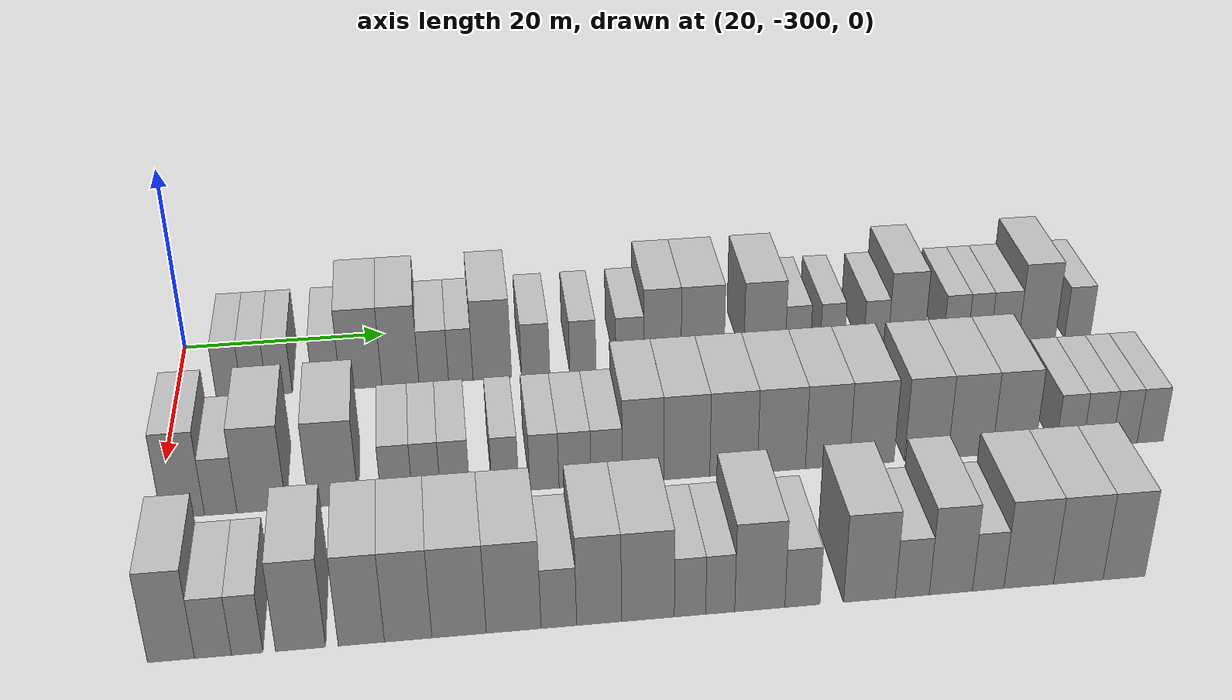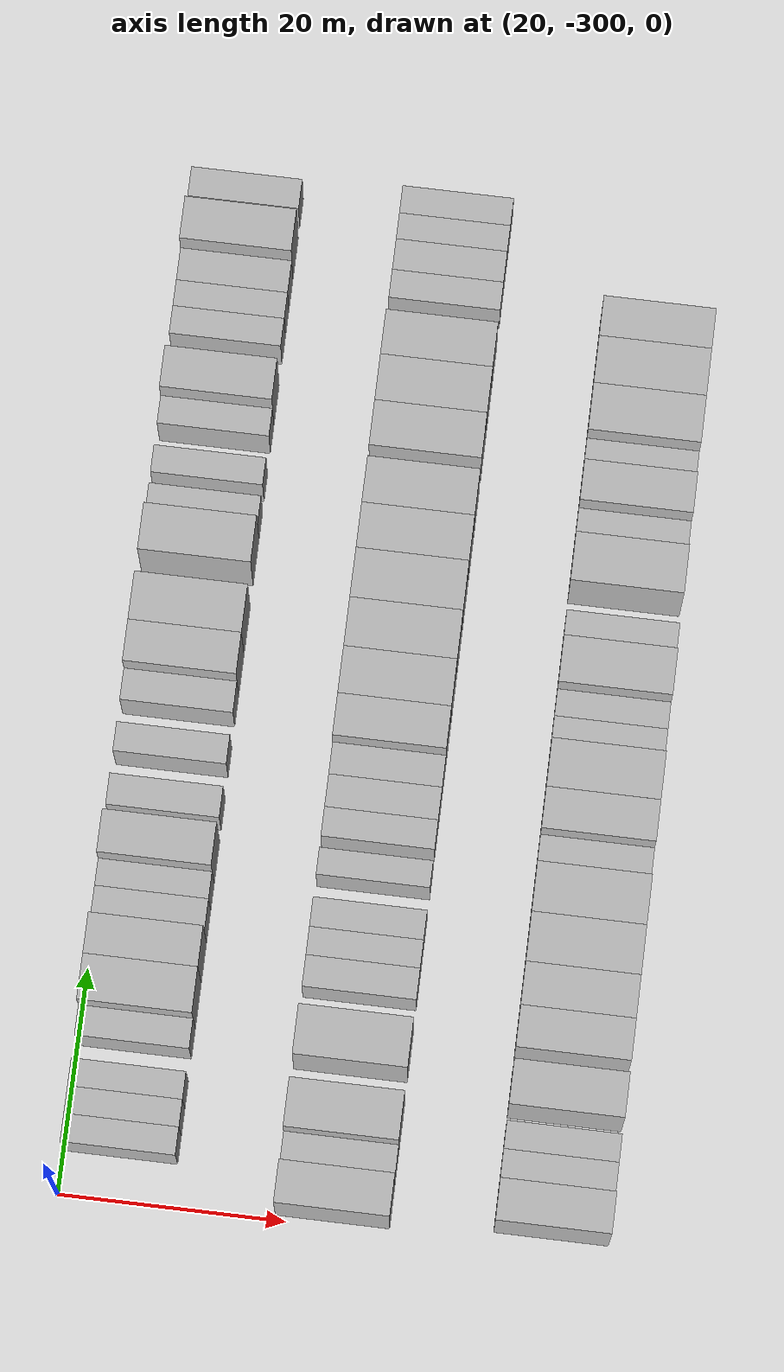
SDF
<sdf version="1.6">
 <world name="default">
  <model name="building_10">
   <static>1</static>
   <pose>25.0000 -294.9065 0 0.000000 0.000000 0.000000</pose>
   <link name="link">
    <pose>0 0 3.00 0 0 0</pose>
    <collision name="collision"><geometry><box><size>10.0000 2.4746 6.0000</size></box></geometry></collision>
    <visual name="visual">
     <cast_shadows>0</cast_shadows>
     <geometry><box><size>10.0000 2.4746 6.0000</size></box></geometry>
     <material>
      <script>
       <uri>model://HANNAS_wall/materials/scripts</uri>
       <uri>model://HANNAS_wall/materials/textures</uri>
       <name>vrc/HANNAS_wall</name>
      </script>
     </material>
    </visual>
   </link>
  </model>
  <model name="building_11">
   <static>1</static>
   <pose>25.0000 -292.4646 0 0.000000 0.000000 0.000000</pose>
   <link name="link">
    <pose>0 0 3.00 0 0 0</pose>
    <collision name="collision"><geometry><box><size>10.0000 2.4092 6.0000</size></box></geometry></collision>
    <visual name="visual">
     <cast_shadows>0</cast_shadows>
     <geometry><box><size>10.0000 2.4092 6.0000</size></box></geometry>
     <material>
      <script>
       <uri>model://HANNAS_wall/materials/scripts</uri>
       <uri>model://HANNAS_wall/materials/textures</uri>
       <name>vrc/HANNAS_wall</name>
      </script>
     </material>
    </visual>
   </link>
  </model>
  <model name="building_12">
   <static>1</static>
   <pose>25.0000 -290.0390 0 0.000000 0.000000 0.000000</pose>
   <link name="link">
    <pose>0 0 3.00 0 0 0</pose>
    <collision name="collision"><geometry><box><size>10.0000 2.4420 6.0000</size></box></geometry></collision>
    <visual name="visual">
     <cast_shadows>0</cast_shadows>
     <geometry><box><size>10.0000 2.4420 6.0000</size></box></geometry>
     <material>
      <script>
       <uri>model://HANNAS_wall/materials/scripts</uri>
       <uri>model://HANNAS_wall/materials/textures</uri>
       <name>vrc/HANNAS_wall</name>
      </script>
     </material>
    </visual>
   </link>
  </model>
  <model name="building_13">
   <static>1</static>
   <pose>25.0000 -285.4829 0 0.000000 0.000000 0.000000</pose>
   <link name="link">
    <pose>0 0 3.00 0 0 0</pose>
    <collision name="collision"><geometry><box><size>10.0000 2.6702 6.0000</size></box></geometry></collision>
    <visual name="visual">
     <cast_shadows>0</cast_shadows>
     <geometry><box><size>10.0000 2.6702 6.0000</size></box></geometry>
     <material>
      <script>
       <uri>model://HANNAS_wall/materials/scripts</uri>
       <uri>model://HANNAS_wall/materials/textures</uri>
       <name>vrc/HANNAS_wall</name>
      </script>
     </material>
    </visual>
   </link>
  </model>
  <model name="building_14">
   <static>1</static>
   <pose>25.0000 -282.1232 0 0.000000 0.000000 0.000000</pose>
   <link name="link">
    <pose>0 0 4.50 0 0 0</pose>
    <collision name="collision"><geometry><box><size>10.0000 4.0493 9.0000</size></box></geometry></collision>
    <visual name="visual">
     <cast_shadows>0</cast_shadows>
     <geometry><box><size>10.0000 4.0493 9.0000</size></box></geometry>
     <material>
      <script>
       <uri>model://HANNAS_wall/materials/scripts</uri>
       <uri>model://HANNAS_wall/materials/textures</uri>
       <name>vrc/HANNAS_wall</name>
      </script>
     </material>
    </visual>
   </link>
  </model>
  <model name="building_15">
   <static>1</static>
   <pose>25.0000 -278.2878 0 0.000000 0.000000 0.000000</pose>
   <link name="link">
    <pose>0 0 4.50 0 0 0</pose>
    <collision name="collision"><geometry><box><size>10.0000 3.6216 9.0000</size></box></geometry></collision>
    <visual name="visual">
     <cast_shadows>0</cast_shadows>
     <geometry><box><size>10.0000 3.6216 9.0000</size></box></geometry>
     <material>
      <script>
       <uri>model://HANNAS_wall/materials/scripts</uri>
       <uri>model://HANNAS_wall/materials/textures</uri>
       <name>vrc/HANNAS_wall</name>
      </script>
     </material>
    </visual>
   </link>
  </model>
  <model name="building_16">
   <static>1</static>
   <pose>25.0000 -275.0232 0 0.000000 0.000000 0.000000</pose>
   <link name="link">
    <pose>0 0 3.00 0 0 0</pose>
    <collision name="collision"><geometry><box><size>10.0000 2.9075 6.0000</size></box></geometry></collision>
    <visual name="visual">
     <cast_shadows>0</cast_shadows>
     <geometry><box><size>10.0000 2.9075 6.0000</size></box></geometry>
     <material>
      <script>
       <uri>model://HANNAS_wall/materials/scripts</uri>
       <uri>model://HANNAS_wall/materials/textures</uri>
       <name>vrc/HANNAS_wall</name>
      </script>
     </material>
    </visual>
   </link>
  </model>
  <model name="building_17">
   <static>1</static>
   <pose>25.0000 -272.3607 0 0.000000 0.000000 0.000000</pose>
   <link name="link">
    <pose>0 0 3.00 0 0 0</pose>
    <collision name="collision"><geometry><box><size>10.0000 2.4175 6.0000</size></box></geometry></collision>
    <visual name="visual">
     <cast_shadows>0</cast_shadows>
     <geometry><box><size>10.0000 2.4175 6.0000</size></box></geometry>
     <material>
      <script>
       <uri>model://HANNAS_wall/materials/scripts</uri>
       <uri>model://HANNAS_wall/materials/textures</uri>
       <name>vrc/HANNAS_wall</name>
      </script>
     </material>
    </visual>
   </link>
  </model>
  <model name="building_18">
   <static>1</static>
   <pose>25.0000 -269.2411 0 0.000000 0.000000 0.000000</pose>
   <link name="link">
    <pose>0 0 4.50 0 0 0</pose>
    <collision name="collision"><geometry><box><size>10.0000 3.8217 9.0000</size></box></geometry></collision>
    <visual name="visual">
     <cast_shadows>0</cast_shadows>
     <geometry><box><size>10.0000 3.8217 9.0000</size></box></geometry>
     <material>
      <script>
       <uri>model://HANNAS_wall/materials/scripts</uri>
       <uri>model://HANNAS_wall/materials/textures</uri>
       <name>vrc/HANNAS_wall</name>
      </script>
     </material>
    </visual>
   </link>
  </model>
  <model name="building_19">
   <static>1</static>
   <pose>25.0000 -264.9265 0 0.000000 0.000000 0.000000</pose>
   <link name="link">
    <pose>0 0 3.00 0 0 0</pose>
    <collision name="collision"><geometry><box><size>10.0000 2.8074 6.0000</size></box></geometry></collision>
    <visual name="visual">
     <cast_shadows>0</cast_shadows>
     <geometry><box><size>10.0000 2.8074 6.0000</size></box></geometry>
     <material>
      <script>
       <uri>model://HANNAS_wall/materials/scripts</uri>
       <uri>model://HANNAS_wall/materials/textures</uri>
       <name>vrc/HANNAS_wall</name>
      </script>
     </material>
    </visual>
   </link>
  </model>
  <model name="building_20">
   <static>1</static>
   <pose>25.0000 -260.2096 0 0.000000 0.000000 0.000000</pose>
   <link name="link">
    <pose>0 0 3.00 0 0 0</pose>
    <collision name="collision"><geometry><box><size>10.0000 2.6264 6.0000</size></box></geometry></collision>
    <visual name="visual">
     <cast_shadows>0</cast_shadows>
     <geometry><box><size>10.0000 2.6264 6.0000</size></box></geometry>
     <material>
      <script>
       <uri>model://HANNAS_wall/materials/scripts</uri>
       <uri>model://HANNAS_wall/materials/textures</uri>
       <name>vrc/HANNAS_wall</name>
      </script>
     </material>
    </visual>
   </link>
  </model>
  <model name="building_21">
   <static>1</static>
   <pose>25.0000 -255.4781 0 0.000000 0.000000 0.000000</pose>
   <link name="link">
    <pose>0 0 3.00 0 0 0</pose>
    <collision name="collision"><geometry><box><size>10.0000 2.8368 6.0000</size></box></geometry></collision>
    <visual name="visual">
     <cast_shadows>0</cast_shadows>
     <geometry><box><size>10.0000 2.8368 6.0000</size></box></geometry>
     <material>
      <script>
       <uri>model://HANNAS_wall/materials/scripts</uri>
       <uri>model://HANNAS_wall/materials/textures</uri>
       <name>vrc/HANNAS_wall</name>
      </script>
     </material>
    </visual>
   </link>
  </model>
  <model name="building_22">
   <static>1</static>
   <pose>25.0000 -252.1929 0 0.000000 0.000000 0.000000</pose>
   <link name="link">
    <pose>0 0 4.50 0 0 0</pose>
    <collision name="collision"><geometry><box><size>10.0000 3.7335 9.0000</size></box></geometry></collision>
    <visual name="visual">
     <cast_shadows>0</cast_shadows>
     <geometry><box><size>10.0000 3.7335 9.0000</size></box></geometry>
     <material>
      <script>
       <uri>model://HANNAS_wall/materials/scripts</uri>
       <uri>model://HANNAS_wall/materials/textures</uri>
       <name>vrc/HANNAS_wall</name>
      </script>
     </material>
    </visual>
   </link>
  </model>
  <model name="building_23">
   <static>1</static>
   <pose>25.0000 -248.1454 0 0.000000 0.000000 0.000000</pose>
   <link name="link">
    <pose>0 0 4.50 0 0 0</pose>
    <collision name="collision"><geometry><box><size>10.0000 4.3615 9.0000</size></box></geometry></collision>
    <visual name="visual">
     <cast_shadows>0</cast_shadows>
     <geometry><box><size>10.0000 4.3615 9.0000</size></box></geometry>
     <material>
      <script>
       <uri>model://HANNAS_wall/materials/scripts</uri>
       <uri>model://HANNAS_wall/materials/textures</uri>
       <name>vrc/HANNAS_wall</name>
      </script>
     </material>
    </visual>
   </link>
  </model>
  <model name="building_24">
   <static>1</static>
   <pose>25.0000 -241.8456 0 0.000000 0.000000 0.000000</pose>
   <link name="link">
    <pose>0 0 4.50 0 0 0</pose>
    <collision name="collision"><geometry><box><size>10.0000 4.2381 9.0000</size></box></geometry></collision>
    <visual name="visual">
     <cast_shadows>0</cast_shadows>
     <geometry><box><size>10.0000 4.2381 9.0000</size></box></geometry>
     <material>
      <script>
       <uri>model://HANNAS_wall/materials/scripts</uri>
       <uri>model://HANNAS_wall/materials/textures</uri>
       <name>vrc/HANNAS_wall</name>
      </script>
     </material>
    </visual>
   </link>
  </model>
  <model name="building_25">
   <static>1</static>
   <pose>25.0000 -238.4380 0 0.000000 0.000000 0.000000</pose>
   <link name="link">
    <pose>0 0 3.00 0 0 0</pose>
    <collision name="collision"><geometry><box><size>10.0000 2.5771 6.0000</size></box></geometry></collision>
    <visual name="visual">
     <cast_shadows>0</cast_shadows>
     <geometry><box><size>10.0000 2.5771 6.0000</size></box></geometry>
     <material>
      <script>
       <uri>model://HANNAS_wall/materials/scripts</uri>
       <uri>model://HANNAS_wall/materials/textures</uri>
       <name>vrc/HANNAS_wall</name>
      </script>
     </material>
    </visual>
   </link>
  </model>
  <model name="building_26">
   <static>1</static>
   <pose>25.0000 -234.9004 0 0.000000 0.000000 0.000000</pose>
   <link name="link">
    <pose>0 0 3.00 0 0 0</pose>
    <collision name="collision"><geometry><box><size>10.0000 2.4980 6.0000</size></box></geometry></collision>
    <visual name="visual">
     <cast_shadows>0</cast_shadows>
     <geometry><box><size>10.0000 2.4980 6.0000</size></box></geometry>
     <material>
      <script>
       <uri>model://HANNAS_wall/materials/scripts</uri>
       <uri>model://HANNAS_wall/materials/textures</uri>
       <name>vrc/HANNAS_wall</name>
      </script>
     </material>
    </visual>
   </link>
  </model>
  <model name="building_27">
   <static>1</static>
   <pose>25.0000 -230.3771 0 0.000000 0.000000 0.000000</pose>
   <link name="link">
    <pose>0 0 3.00 0 0 0</pose>
    <collision name="collision"><geometry><box><size>10.0000 2.5487 6.0000</size></box></geometry></collision>
    <visual name="visual">
     <cast_shadows>0</cast_shadows>
     <geometry><box><size>10.0000 2.5487 6.0000</size></box></geometry>
     <material>
      <script>
       <uri>model://HANNAS_wall/materials/scripts</uri>
       <uri>model://HANNAS_wall/materials/textures</uri>
       <name>vrc/HANNAS_wall</name>
      </script>
     </material>
    </visual>
   </link>
  </model>
  <model name="building_28">
   <static>1</static>
   <pose>25.0000 -227.2078 0 0.000000 0.000000 0.000000</pose>
   <link name="link">
    <pose>0 0 4.50 0 0 0</pose>
    <collision name="collision"><geometry><box><size>10.0000 3.7900 9.0000</size></box></geometry></collision>
    <visual name="visual">
     <cast_shadows>0</cast_shadows>
     <geometry><box><size>10.0000 3.7900 9.0000</size></box></geometry>
     <material>
      <script>
       <uri>model://HANNAS_wall/materials/scripts</uri>
       <uri>model://HANNAS_wall/materials/textures</uri>
       <name>vrc/HANNAS_wall</name>
      </script>
     </material>
    </visual>
   </link>
  </model>
  <model name="building_29">
   <static>1</static>
   <pose>25.0000 -222.0278 0 0.000000 0.000000 0.000000</pose>
   <link name="link">
    <pose>0 0 3.00 0 0 0</pose>
    <collision name="collision"><geometry><box><size>10.0000 2.5699 6.0000</size></box></geometry></collision>
    <visual name="visual">
     <cast_shadows>0</cast_shadows>
     <geometry><box><size>10.0000 2.5699 6.0000</size></box></geometry>
     <material>
      <script>
       <uri>model://HANNAS_wall/materials/scripts</uri>
       <uri>model://HANNAS_wall/materials/textures</uri>
       <name>vrc/HANNAS_wall</name>
      </script>
     </material>
    </visual>
   </link>
  </model>
  <model name="building_30">
   <static>1</static>
   <pose>25.0000 -219.5362 0 0.000000 0.000000 0.000000</pose>
   <link name="link">
    <pose>0 0 3.00 0 0 0</pose>
    <collision name="collision"><geometry><box><size>10.0000 2.4133 6.0000</size></box></geometry></collision>
    <visual name="visual">
     <cast_shadows>0</cast_shadows>
     <geometry><box><size>10.0000 2.4133 6.0000</size></box></geometry>
     <material>
      <script>
       <uri>model://HANNAS_wall/materials/scripts</uri>
       <uri>model://HANNAS_wall/materials/textures</uri>
       <name>vrc/HANNAS_wall</name>
      </script>
     </material>
    </visual>
   </link>
  </model>
  <model name="building_31">
   <static>1</static>
   <pose>25.0000 -216.8375 0 0.000000 0.000000 0.000000</pose>
   <link name="link">
    <pose>0 0 3.00 0 0 0</pose>
    <collision name="collision"><geometry><box><size>10.0000 2.9841 6.0000</size></box></geometry></collision>
    <visual name="visual">
     <cast_shadows>0</cast_shadows>
     <geometry><box><size>10.0000 2.9841 6.0000</size></box></geometry>
     <material>
      <script>
       <uri>model://HANNAS_wall/materials/scripts</uri>
       <uri>model://HANNAS_wall/materials/textures</uri>
       <name>vrc/HANNAS_wall</name>
      </script>
     </material>
    </visual>
   </link>
  </model>
  <model name="building_32">
   <static>1</static>
   <pose>25.0000 -213.4018 0 0.000000 0.000000 0.000000</pose>
   <link name="link">
    <pose>0 0 4.50 0 0 0</pose>
    <collision name="collision"><geometry><box><size>10.0000 3.8874 9.0000</size></box></geometry></collision>
    <visual name="visual">
     <cast_shadows>0</cast_shadows>
     <geometry><box><size>10.0000 3.8874 9.0000</size></box></geometry>
     <material>
      <script>
       <uri>model://HANNAS_wall/materials/scripts</uri>
       <uri>model://HANNAS_wall/materials/textures</uri>
       <name>vrc/HANNAS_wall</name>
      </script>
     </material>
    </visual>
   </link>
  </model>
  <model name="building_33">
   <static>1</static>
   <pose>25.0000 -209.0826 0 0.000000 0.000000 0.000000</pose>
   <link name="link">
    <pose>0 0 3.00 0 0 0</pose>
    <collision name="collision"><geometry><box><size>10.0000 2.7510 6.0000</size></box></geometry></collision>
    <visual name="visual">
     <cast_shadows>0</cast_shadows>
     <geometry><box><size>10.0000 2.7510 6.0000</size></box></geometry>
     <material>
      <script>
       <uri>model://HANNAS_wall/materials/scripts</uri>
       <uri>model://HANNAS_wall/materials/textures</uri>
       <name>vrc/HANNAS_wall</name>
      </script>
     </material>
    </visual>
   </link>
  </model>
  <model name="building_181">
   <static>1</static>
   <pose>44.0000 -297.6415 0 0.000000 0.000000 0.000000</pose>
   <link name="link">
    <pose>0 0 4.50 0 0 0</pose>
    <collision name="collision"><geometry><box><size>10.0000 3.7515 9.0000</size></box></geometry></collision>
    <visual name="visual">
     <cast_shadows>0</cast_shadows>
     <geometry><box><size>10.0000 3.7515 9.0000</size></box></geometry>
     <material>
      <script>
       <uri>model://HANNAS_wall/materials/scripts</uri>
       <uri>model://HANNAS_wall/materials/textures</uri>
       <name>vrc/HANNAS_wall</name>
      </script>
     </material>
    </visual>
   </link>
  </model>
  <model name="building_182">
   <static>1</static>
   <pose>44.0000 -294.3470 0 0.000000 0.000000 0.000000</pose>
   <link name="link">
    <pose>0 0 3.00 0 0 0</pose>
    <collision name="collision"><geometry><box><size>10.0000 2.8374 6.0000</size></box></geometry></collision>
    <visual name="visual">
     <cast_shadows>0</cast_shadows>
     <geometry><box><size>10.0000 2.8374 6.0000</size></box></geometry>
     <material>
      <script>
       <uri>model://HANNAS_wall/materials/scripts</uri>
       <uri>model://HANNAS_wall/materials/textures</uri>
       <name>vrc/HANNAS_wall</name>
      </script>
     </material>
    </visual>
   </link>
  </model>
  <model name="building_183">
   <static>1</static>
   <pose>44.0000 -290.7730 0 0.000000 0.000000 0.000000</pose>
   <link name="link">
    <pose>0 0 4.50 0 0 0</pose>
    <collision name="collision"><geometry><box><size>10.0000 4.3106 9.0000</size></box></geometry></collision>
    <visual name="visual">
     <cast_shadows>0</cast_shadows>
     <geometry><box><size>10.0000 4.3106 9.0000</size></box></geometry>
     <material>
      <script>
       <uri>model://HANNAS_wall/materials/scripts</uri>
       <uri>model://HANNAS_wall/materials/textures</uri>
       <name>vrc/HANNAS_wall</name>
      </script>
     </material>
    </visual>
   </link>
  </model>
  <model name="building_184">
   <static>1</static>
   <pose>44.0000 -284.4178 0 0.000000 0.000000 0.000000</pose>
   <link name="link">
    <pose>0 0 4.50 0 0 0</pose>
    <collision name="collision"><geometry><box><size>10.0000 4.3997 9.0000</size></box></geometry></collision>
    <visual name="visual">
     <cast_shadows>0</cast_shadows>
     <geometry><box><size>10.0000 4.3997 9.0000</size></box></geometry>
     <material>
      <script>
       <uri>model://HANNAS_wall/materials/scripts</uri>
       <uri>model://HANNAS_wall/materials/textures</uri>
       <name>vrc/HANNAS_wall</name>
      </script>
     </material>
    </visual>
   </link>
  </model>
  <model name="building_185">
   <static>1</static>
   <pose>44.0000 -278.8177 0 0.000000 0.000000 0.000000</pose>
   <link name="link">
    <pose>0 0 3.00 0 0 0</pose>
    <collision name="collision"><geometry><box><size>10.0000 2.8006 6.0000</size></box></geometry></collision>
    <visual name="visual">
     <cast_shadows>0</cast_shadows>
     <geometry><box><size>10.0000 2.8006 6.0000</size></box></geometry>
     <material>
      <script>
       <uri>model://HANNAS_wall/materials/scripts</uri>
       <uri>model://HANNAS_wall/materials/textures</uri>
       <name>vrc/HANNAS_wall</name>
      </script>
     </material>
    </visual>
   </link>
  </model>
  <model name="building_186">
   <static>1</static>
   <pose>44.0000 -276.1673 0 0.000000 0.000000 0.000000</pose>
   <link name="link">
    <pose>0 0 3.00 0 0 0</pose>
    <collision name="collision"><geometry><box><size>10.0000 2.5003 6.0000</size></box></geometry></collision>
    <visual name="visual">
     <cast_shadows>0</cast_shadows>
     <geometry><box><size>10.0000 2.5003 6.0000</size></box></geometry>
     <material>
      <script>
       <uri>model://HANNAS_wall/materials/scripts</uri>
       <uri>model://HANNAS_wall/materials/textures</uri>
       <name>vrc/HANNAS_wall</name>
      </script>
     </material>
    </visual>
   </link>
  </model>
  <model name="building_187">
   <static>1</static>
   <pose>44.0000 -273.6014 0 0.000000 0.000000 0.000000</pose>
   <link name="link">
    <pose>0 0 3.00 0 0 0</pose>
    <collision name="collision"><geometry><box><size>10.0000 2.6316 6.0000</size></box></geometry></collision>
    <visual name="visual">
     <cast_shadows>0</cast_shadows>
     <geometry><box><size>10.0000 2.6316 6.0000</size></box></geometry>
     <material>
      <script>
       <uri>model://HANNAS_wall/materials/scripts</uri>
       <uri>model://HANNAS_wall/materials/textures</uri>
       <name>vrc/HANNAS_wall</name>
      </script>
     </material>
    </visual>
   </link>
  </model>
  <model name="building_188">
   <static>1</static>
   <pose>44.0000 -269.0796 0 0.000000 0.000000 0.000000</pose>
   <link name="link">
    <pose>0 0 3.00 0 0 0</pose>
    <collision name="collision"><geometry><box><size>10.0000 2.4119 6.0000</size></box></geometry></collision>
    <visual name="visual">
     <cast_shadows>0</cast_shadows>
     <geometry><box><size>10.0000 2.4119 6.0000</size></box></geometry>
     <material>
      <script>
       <uri>model://HANNAS_wall/materials/scripts</uri>
       <uri>model://HANNAS_wall/materials/textures</uri>
       <name>vrc/HANNAS_wall</name>
      </script>
     </material>
    </visual>
   </link>
  </model>
  <model name="building_189">
   <static>1</static>
   <pose>44.0000 -265.5521 0 0.000000 0.000000 0.000000</pose>
   <link name="link">
    <pose>0 0 3.00 0 0 0</pose>
    <collision name="collision"><geometry><box><size>10.0000 2.6431 6.0000</size></box></geometry></collision>
    <visual name="visual">
     <cast_shadows>0</cast_shadows>
     <geometry><box><size>10.0000 2.6431 6.0000</size></box></geometry>
     <material>
      <script>
       <uri>model://HANNAS_wall/materials/scripts</uri>
       <uri>model://HANNAS_wall/materials/textures</uri>
       <name>vrc/HANNAS_wall</name>
      </script>
     </material>
    </visual>
   </link>
  </model>
  <model name="building_190">
   <static>1</static>
   <pose>44.0000 -262.7664 0 0.000000 0.000000 0.000000</pose>
   <link name="link">
    <pose>0 0 3.00 0 0 0</pose>
    <collision name="collision"><geometry><box><size>10.0000 2.9283 6.0000</size></box></geometry></collision>
    <visual name="visual">
     <cast_shadows>0</cast_shadows>
     <geometry><box><size>10.0000 2.9283 6.0000</size></box></geometry>
     <material>
      <script>
       <uri>model://HANNAS_wall/materials/scripts</uri>
       <uri>model://HANNAS_wall/materials/textures</uri>
       <name>vrc/HANNAS_wall</name>
      </script>
     </material>
    </visual>
   </link>
  </model>
  <model name="building_191">
   <static>1</static>
   <pose>44.0000 -259.8717 0 0.000000 0.000000 0.000000</pose>
   <link name="link">
    <pose>0 0 3.00 0 0 0</pose>
    <collision name="collision"><geometry><box><size>10.0000 2.8611 6.0000</size></box></geometry></collision>
    <visual name="visual">
     <cast_shadows>0</cast_shadows>
     <geometry><box><size>10.0000 2.8611 6.0000</size></box></geometry>
     <material>
      <script>
       <uri>model://HANNAS_wall/materials/scripts</uri>
       <uri>model://HANNAS_wall/materials/textures</uri>
       <name>vrc/HANNAS_wall</name>
      </script>
     </material>
    </visual>
   </link>
  </model>
  <model name="building_192">
   <static>1</static>
   <pose>44.0000 -256.5457 0 0.000000 0.000000 0.000000</pose>
   <link name="link">
    <pose>0 0 4.50 0 0 0</pose>
    <collision name="collision"><geometry><box><size>10.0000 3.7911 9.0000</size></box></geometry></collision>
    <visual name="visual">
     <cast_shadows>0</cast_shadows>
     <geometry><box><size>10.0000 3.7911 9.0000</size></box></geometry>
     <material>
      <script>
       <uri>model://HANNAS_wall/materials/scripts</uri>
       <uri>model://HANNAS_wall/materials/textures</uri>
       <name>vrc/HANNAS_wall</name>
      </script>
     </material>
    </visual>
   </link>
  </model>
  <model name="building_193">
   <static>1</static>
   <pose>44.0000 -252.5332 0 0.000000 0.000000 0.000000</pose>
   <link name="link">
    <pose>0 0 4.50 0 0 0</pose>
    <collision name="collision"><geometry><box><size>10.0000 4.2337 9.0000</size></box></geometry></collision>
    <visual name="visual">
     <cast_shadows>0</cast_shadows>
     <geometry><box><size>10.0000 4.2337 9.0000</size></box></geometry>
     <material>
      <script>
       <uri>model://HANNAS_wall/materials/scripts</uri>
       <uri>model://HANNAS_wall/materials/textures</uri>
       <name>vrc/HANNAS_wall</name>
      </script>
     </material>
    </visual>
   </link>
  </model>
  <model name="building_194">
   <static>1</static>
   <pose>44.0000 -248.2084 0 0.000000 0.000000 0.000000</pose>
   <link name="link">
    <pose>0 0 4.50 0 0 0</pose>
    <collision name="collision"><geometry><box><size>10.0000 4.4159 9.0000</size></box></geometry></collision>
    <visual name="visual">
     <cast_shadows>0</cast_shadows>
     <geometry><box><size>10.0000 4.4159 9.0000</size></box></geometry>
     <material>
      <script>
       <uri>model://HANNAS_wall/materials/scripts</uri>
       <uri>model://HANNAS_wall/materials/textures</uri>
       <name>vrc/HANNAS_wall</name>
      </script>
     </material>
    </visual>
   </link>
  </model>
  <model name="building_195">
   <static>1</static>
   <pose>44.0000 -243.7559 0 0.000000 0.000000 0.000000</pose>
   <link name="link">
    <pose>0 0 4.50 0 0 0</pose>
    <collision name="collision"><geometry><box><size>10.0000 4.4892 9.0000</size></box></geometry></collision>
    <visual name="visual">
     <cast_shadows>0</cast_shadows>
     <geometry><box><size>10.0000 4.4892 9.0000</size></box></geometry>
     <material>
      <script>
       <uri>model://HANNAS_wall/materials/scripts</uri>
       <uri>model://HANNAS_wall/materials/textures</uri>
       <name>vrc/HANNAS_wall</name>
      </script>
     </material>
    </visual>
   </link>
  </model>
  <model name="building_196">
   <static>1</static>
   <pose>44.0000 -239.4496 0 0.000000 0.000000 0.000000</pose>
   <link name="link">
    <pose>0 0 4.50 0 0 0</pose>
    <collision name="collision"><geometry><box><size>10.0000 4.1235 9.0000</size></box></geometry></collision>
    <visual name="visual">
     <cast_shadows>0</cast_shadows>
     <geometry><box><size>10.0000 4.1235 9.0000</size></box></geometry>
     <material>
      <script>
       <uri>model://HANNAS_wall/materials/scripts</uri>
       <uri>model://HANNAS_wall/materials/textures</uri>
       <name>vrc/HANNAS_wall</name>
      </script>
     </material>
    </visual>
   </link>
  </model>
  <model name="building_197">
   <static>1</static>
   <pose>44.0000 -235.2757 0 0.000000 0.000000 0.000000</pose>
   <link name="link">
    <pose>0 0 4.50 0 0 0</pose>
    <collision name="collision"><geometry><box><size>10.0000 4.2243 9.0000</size></box></geometry></collision>
    <visual name="visual">
     <cast_shadows>0</cast_shadows>
     <geometry><box><size>10.0000 4.2243 9.0000</size></box></geometry>
     <material>
      <script>
       <uri>model://HANNAS_wall/materials/scripts</uri>
       <uri>model://HANNAS_wall/materials/textures</uri>
       <name>vrc/HANNAS_wall</name>
      </script>
     </material>
    </visual>
   </link>
  </model>
  <model name="building_198">
   <static>1</static>
   <pose>44.0000 -230.0866 0 0.000000 0.000000 0.000000</pose>
   <link name="link">
    <pose>0 0 4.50 0 0 0</pose>
    <collision name="collision"><geometry><box><size>10.0000 4.1537 9.0000</size></box></geometry></collision>
    <visual name="visual">
     <cast_shadows>0</cast_shadows>
     <geometry><box><size>10.0000 4.1537 9.0000</size></box></geometry>
     <material>
      <script>
       <uri>model://HANNAS_wall/materials/scripts</uri>
       <uri>model://HANNAS_wall/materials/textures</uri>
       <name>vrc/HANNAS_wall</name>
      </script>
     </material>
    </visual>
   </link>
  </model>
  <model name="building_199">
   <static>1</static>
   <pose>44.0000 -225.8986 0 0.000000 0.000000 0.000000</pose>
   <link name="link">
    <pose>0 0 4.50 0 0 0</pose>
    <collision name="collision"><geometry><box><size>10.0000 4.2223 9.0000</size></box></geometry></collision>
    <visual name="visual">
     <cast_shadows>0</cast_shadows>
     <geometry><box><size>10.0000 4.2223 9.0000</size></box></geometry>
     <material>
      <script>
       <uri>model://HANNAS_wall/materials/scripts</uri>
       <uri>model://HANNAS_wall/materials/textures</uri>
       <name>vrc/HANNAS_wall</name>
      </script>
     </material>
    </visual>
   </link>
  </model>
  <model name="building_200">
   <static>1</static>
   <pose>44.0000 -221.7266 0 0.000000 0.000000 0.000000</pose>
   <link name="link">
    <pose>0 0 4.50 0 0 0</pose>
    <collision name="collision"><geometry><box><size>10.0000 4.1217 9.0000</size></box></geometry></collision>
    <visual name="visual">
     <cast_shadows>0</cast_shadows>
     <geometry><box><size>10.0000 4.1217 9.0000</size></box></geometry>
     <material>
      <script>
       <uri>model://HANNAS_wall/materials/scripts</uri>
       <uri>model://HANNAS_wall/materials/textures</uri>
       <name>vrc/HANNAS_wall</name>
      </script>
     </material>
    </visual>
   </link>
  </model>
  <model name="building_201">
   <static>1</static>
   <pose>44.0000 -216.3591 0 0.000000 0.000000 0.000000</pose>
   <link name="link">
    <pose>0 0 3.00 0 0 0</pose>
    <collision name="collision"><geometry><box><size>10.0000 2.6135 6.0000</size></box></geometry></collision>
    <visual name="visual">
     <cast_shadows>0</cast_shadows>
     <geometry><box><size>10.0000 2.6135 6.0000</size></box></geometry>
     <material>
      <script>
       <uri>model://HANNAS_wall/materials/scripts</uri>
       <uri>model://HANNAS_wall/materials/textures</uri>
       <name>vrc/HANNAS_wall</name>
      </script>
     </material>
    </visual>
   </link>
  </model>
  <model name="building_202">
   <static>1</static>
   <pose>44.0000 -213.6155 0 0.000000 0.000000 0.000000</pose>
   <link name="link">
    <pose>0 0 3.00 0 0 0</pose>
    <collision name="collision"><geometry><box><size>10.0000 2.8737 6.0000</size></box></geometry></collision>
    <visual name="visual">
     <cast_shadows>0</cast_shadows>
     <geometry><box><size>10.0000 2.8737 6.0000</size></box></geometry>
     <material>
      <script>
       <uri>model://HANNAS_wall/materials/scripts</uri>
       <uri>model://HANNAS_wall/materials/textures</uri>
       <name>vrc/HANNAS_wall</name>
      </script>
     </material>
    </visual>
   </link>
  </model>
  <model name="building_203">
   <static>1</static>
   <pose>44.0000 -210.9670 0 0.000000 0.000000 0.000000</pose>
   <link name="link">
    <pose>0 0 3.00 0 0 0</pose>
    <collision name="collision"><geometry><box><size>10.0000 2.4234 6.0000</size></box></geometry></collision>
    <visual name="visual">
     <cast_shadows>0</cast_shadows>
     <geometry><box><size>10.0000 2.4234 6.0000</size></box></geometry>
     <material>
      <script>
       <uri>model://HANNAS_wall/materials/scripts</uri>
       <uri>model://HANNAS_wall/materials/textures</uri>
       <name>vrc/HANNAS_wall</name>
      </script>
     </material>
    </visual>
   </link>
  </model>
  <model name="building_204">
   <static>1</static>
   <pose>44.0000 -208.4758 0 0.000000 0.000000 0.000000</pose>
   <link name="link">
    <pose>0 0 3.00 0 0 0</pose>
    <collision name="collision"><geometry><box><size>10.0000 2.5591 6.0000</size></box></geometry></collision>
    <visual name="visual">
     <cast_shadows>0</cast_shadows>
     <geometry><box><size>10.0000 2.5591 6.0000</size></box></geometry>
     <material>
      <script>
       <uri>model://HANNAS_wall/materials/scripts</uri>
       <uri>model://HANNAS_wall/materials/textures</uri>
       <name>vrc/HANNAS_wall</name>
      </script>
     </material>
    </visual>
   </link>
  </model>
  <model name="building_361">
   <static>1</static>
   <pose>63.0000 -296.8896 0 0.000000 0.000000 0.000000</pose>
   <link name="link">
    <pose>0 0 4.50 0 0 0</pose>
    <collision name="collision"><geometry><box><size>10.0000 3.6764 9.0000</size></box></geometry></collision>
    <visual name="visual">
     <cast_shadows>0</cast_shadows>
     <geometry><box><size>10.0000 3.6764 9.0000</size></box></geometry>
     <material>
      <script>
       <uri>model://HANNAS_wall/materials/scripts</uri>
       <uri>model://HANNAS_wall/materials/textures</uri>
       <name>vrc/HANNAS_wall</name>
      </script>
     </material>
    </visual>
   </link>
  </model>
  <model name="building_362">
   <static>1</static>
   <pose>63.0000 -293.6010 0 0.000000 0.000000 0.000000</pose>
   <link name="link">
    <pose>0 0 3.00 0 0 0</pose>
    <collision name="collision"><geometry><box><size>10.0000 2.9008 6.0000</size></box></geometry></collision>
    <visual name="visual">
     <cast_shadows>0</cast_shadows>
     <geometry><box><size>10.0000 2.9008 6.0000</size></box></geometry>
     <material>
      <script>
       <uri>model://HANNAS_wall/materials/scripts</uri>
       <uri>model://HANNAS_wall/materials/textures</uri>
       <name>vrc/HANNAS_wall</name>
      </script>
     </material>
    </visual>
   </link>
  </model>
  <model name="building_363">
   <static>1</static>
   <pose>63.0000 -290.9128 0 0.000000 0.000000 0.000000</pose>
   <link name="link">
    <pose>0 0 3.00 0 0 0</pose>
    <collision name="collision"><geometry><box><size>10.0000 2.4757 6.0000</size></box></geometry></collision>
    <visual name="visual">
     <cast_shadows>0</cast_shadows>
     <geometry><box><size>10.0000 2.4757 6.0000</size></box></geometry>
     <material>
      <script>
       <uri>model://HANNAS_wall/materials/scripts</uri>
       <uri>model://HANNAS_wall/materials/textures</uri>
       <name>vrc/HANNAS_wall</name>
      </script>
     </material>
    </visual>
   </link>
  </model>
  <model name="building_364">
   <static>1</static>
   <pose>63.0000 -286.6892 0 0.000000 0.000000 0.000000</pose>
   <link name="link">
    <pose>0 0 4.50 0 0 0</pose>
    <collision name="collision"><geometry><box><size>10.0000 3.9715 9.0000</size></box></geometry></collision>
    <visual name="visual">
     <cast_shadows>0</cast_shadows>
     <geometry><box><size>10.0000 3.9715 9.0000</size></box></geometry>
     <material>
      <script>
       <uri>model://HANNAS_wall/materials/scripts</uri>
       <uri>model://HANNAS_wall/materials/textures</uri>
       <name>vrc/HANNAS_wall</name>
      </script>
     </material>
    </visual>
   </link>
  </model>
  <model name="building_365">
   <static>1</static>
   <pose>63.0000 -281.8565 0 0.000000 0.000000 0.000000</pose>
   <link name="link">
    <pose>0 0 4.50 0 0 0</pose>
    <collision name="collision"><geometry><box><size>10.0000 3.6940 9.0000</size></box></geometry></collision>
    <visual name="visual">
     <cast_shadows>0</cast_shadows>
     <geometry><box><size>10.0000 3.6940 9.0000</size></box></geometry>
     <material>
      <script>
       <uri>model://HANNAS_wall/materials/scripts</uri>
       <uri>model://HANNAS_wall/materials/textures</uri>
       <name>vrc/HANNAS_wall</name>
      </script>
     </material>
    </visual>
   </link>
  </model>
  <model name="building_366">
   <static>1</static>
   <pose>63.0000 -278.1014 0 0.000000 0.000000 0.000000</pose>
   <link name="link">
    <pose>0 0 4.50 0 0 0</pose>
    <collision name="collision"><geometry><box><size>10.0000 3.8161 9.0000</size></box></geometry></collision>
    <visual name="visual">
     <cast_shadows>0</cast_shadows>
     <geometry><box><size>10.0000 3.8161 9.0000</size></box></geometry>
     <material>
      <script>
       <uri>model://HANNAS_wall/materials/scripts</uri>
       <uri>model://HANNAS_wall/materials/textures</uri>
       <name>vrc/HANNAS_wall</name>
      </script>
     </material>
    </visual>
   </link>
  </model>
  <model name="building_367">
   <static>1</static>
   <pose>63.0000 -273.9947 0 0.000000 0.000000 0.000000</pose>
   <link name="link">
    <pose>0 0 4.50 0 0 0</pose>
    <collision name="collision"><geometry><box><size>10.0000 4.3972 9.0000</size></box></geometry></collision>
    <visual name="visual">
     <cast_shadows>0</cast_shadows>
     <geometry><box><size>10.0000 4.3972 9.0000</size></box></geometry>
     <material>
      <script>
       <uri>model://HANNAS_wall/materials/scripts</uri>
       <uri>model://HANNAS_wall/materials/textures</uri>
       <name>vrc/HANNAS_wall</name>
      </script>
     </material>
    </visual>
   </link>
  </model>
  <model name="building_368">
   <static>1</static>
   <pose>63.0000 -269.5645 0 0.000000 0.000000 0.000000</pose>
   <link name="link">
    <pose>0 0 4.50 0 0 0</pose>
    <collision name="collision"><geometry><box><size>10.0000 4.4633 9.0000</size></box></geometry></collision>
    <visual name="visual">
     <cast_shadows>0</cast_shadows>
     <geometry><box><size>10.0000 4.4633 9.0000</size></box></geometry>
     <material>
      <script>
       <uri>model://HANNAS_wall/materials/scripts</uri>
       <uri>model://HANNAS_wall/materials/textures</uri>
       <name>vrc/HANNAS_wall</name>
      </script>
     </material>
    </visual>
   </link>
  </model>
  <model name="building_369">
   <static>1</static>
   <pose>63.0000 -265.8776 0 0.000000 0.000000 0.000000</pose>
   <link name="link">
    <pose>0 0 3.00 0 0 0</pose>
    <collision name="collision"><geometry><box><size>10.0000 2.9104 6.0000</size></box></geometry></collision>
    <visual name="visual">
     <cast_shadows>0</cast_shadows>
     <geometry><box><size>10.0000 2.9104 6.0000</size></box></geometry>
     <material>
      <script>
       <uri>model://HANNAS_wall/materials/scripts</uri>
       <uri>model://HANNAS_wall/materials/textures</uri>
       <name>vrc/HANNAS_wall</name>
      </script>
     </material>
    </visual>
   </link>
  </model>
  <model name="building_370">
   <static>1</static>
   <pose>63.0000 -262.5702 0 0.000000 0.000000 0.000000</pose>
   <link name="link">
    <pose>0 0 4.50 0 0 0</pose>
    <collision name="collision"><geometry><box><size>10.0000 3.7043 9.0000</size></box></geometry></collision>
    <visual name="visual">
     <cast_shadows>0</cast_shadows>
     <geometry><box><size>10.0000 3.7043 9.0000</size></box></geometry>
     <material>
      <script>
       <uri>model://HANNAS_wall/materials/scripts</uri>
       <uri>model://HANNAS_wall/materials/textures</uri>
       <name>vrc/HANNAS_wall</name>
      </script>
     </material>
    </visual>
   </link>
  </model>
  <model name="building_371">
   <static>1</static>
   <pose>63.0000 -258.5419 0 0.000000 0.000000 0.000000</pose>
   <link name="link">
    <pose>0 0 4.50 0 0 0</pose>
    <collision name="collision"><geometry><box><size>10.0000 4.3522 9.0000</size></box></geometry></collision>
    <visual name="visual">
     <cast_shadows>0</cast_shadows>
     <geometry><box><size>10.0000 4.3522 9.0000</size></box></geometry>
     <material>
      <script>
       <uri>model://HANNAS_wall/materials/scripts</uri>
       <uri>model://HANNAS_wall/materials/textures</uri>
       <name>vrc/HANNAS_wall</name>
      </script>
     </material>
    </visual>
   </link>
  </model>
  <model name="building_372">
   <static>1</static>
   <pose>63.0000 -255.0656 0 0.000000 0.000000 0.000000</pose>
   <link name="link">
    <pose>0 0 3.00 0 0 0</pose>
    <collision name="collision"><geometry><box><size>10.0000 2.6005 6.0000</size></box></geometry></collision>
    <visual name="visual">
     <cast_shadows>0</cast_shadows>
     <geometry><box><size>10.0000 2.6005 6.0000</size></box></geometry>
     <material>
      <script>
       <uri>model://HANNAS_wall/materials/scripts</uri>
       <uri>model://HANNAS_wall/materials/textures</uri>
       <name>vrc/HANNAS_wall</name>
      </script>
     </material>
    </visual>
   </link>
  </model>
  <model name="building_373">
   <static>1</static>
   <pose>63.0000 -252.5535 0 0.000000 0.000000 0.000000</pose>
   <link name="link">
    <pose>0 0 3.00 0 0 0</pose>
    <collision name="collision"><geometry><box><size>10.0000 2.4236 6.0000</size></box></geometry></collision>
    <visual name="visual">
     <cast_shadows>0</cast_shadows>
     <geometry><box><size>10.0000 2.4236 6.0000</size></box></geometry>
     <material>
      <script>
       <uri>model://HANNAS_wall/materials/scripts</uri>
       <uri>model://HANNAS_wall/materials/textures</uri>
       <name>vrc/HANNAS_wall</name>
      </script>
     </material>
    </visual>
   </link>
  </model>
  <model name="building_374">
   <static>1</static>
   <pose>63.0000 -249.2365 0 0.000000 0.000000 0.000000</pose>
   <link name="link">
    <pose>0 0 4.50 0 0 0</pose>
    <collision name="collision"><geometry><box><size>10.0000 4.2103 9.0000</size></box></geometry></collision>
    <visual name="visual">
     <cast_shadows>0</cast_shadows>
     <geometry><box><size>10.0000 4.2103 9.0000</size></box></geometry>
     <material>
      <script>
       <uri>model://HANNAS_wall/materials/scripts</uri>
       <uri>model://HANNAS_wall/materials/textures</uri>
       <name>vrc/HANNAS_wall</name>
      </script>
     </material>
    </visual>
   </link>
  </model>
  <model name="building_375">
   <static>1</static>
   <pose>63.0000 -245.6490 0 0.000000 0.000000 0.000000</pose>
   <link name="link">
    <pose>0 0 3.00 0 0 0</pose>
    <collision name="collision"><geometry><box><size>10.0000 2.9649 6.0000</size></box></geometry></collision>
    <visual name="visual">
     <cast_shadows>0</cast_shadows>
     <geometry><box><size>10.0000 2.9649 6.0000</size></box></geometry>
     <material>
      <script>
       <uri>model://HANNAS_wall/materials/scripts</uri>
       <uri>model://HANNAS_wall/materials/textures</uri>
       <name>vrc/HANNAS_wall</name>
      </script>
     </material>
    </visual>
   </link>
  </model>
  <model name="building_376">
   <static>1</static>
   <pose>63.0000 -239.9661 0 0.000000 0.000000 0.000000</pose>
   <link name="link">
    <pose>0 0 4.50 0 0 0</pose>
    <collision name="collision"><geometry><box><size>10.0000 4.4007 9.0000</size></box></geometry></collision>
    <visual name="visual">
     <cast_shadows>0</cast_shadows>
     <geometry><box><size>10.0000 4.4007 9.0000</size></box></geometry>
     <material>
      <script>
       <uri>model://HANNAS_wall/materials/scripts</uri>
       <uri>model://HANNAS_wall/materials/textures</uri>
       <name>vrc/HANNAS_wall</name>
      </script>
     </material>
    </visual>
   </link>
  </model>
  <model name="building_377">
   <static>1</static>
   <pose>63.0000 -236.3128 0 0.000000 0.000000 0.000000</pose>
   <link name="link">
    <pose>0 0 3.00 0 0 0</pose>
    <collision name="collision"><geometry><box><size>10.0000 2.9060 6.0000</size></box></geometry></collision>
    <visual name="visual">
     <cast_shadows>0</cast_shadows>
     <geometry><box><size>10.0000 2.9060 6.0000</size></box></geometry>
     <material>
      <script>
       <uri>model://HANNAS_wall/materials/scripts</uri>
       <uri>model://HANNAS_wall/materials/textures</uri>
       <name>vrc/HANNAS_wall</name>
      </script>
     </material>
    </visual>
   </link>
  </model>
  <model name="building_378">
   <static>1</static>
   <pose>63.0000 -233.0045 0 0.000000 0.000000 0.000000</pose>
   <link name="link">
    <pose>0 0 4.50 0 0 0</pose>
    <collision name="collision"><geometry><box><size>10.0000 3.7107 9.0000</size></box></geometry></collision>
    <visual name="visual">
     <cast_shadows>0</cast_shadows>
     <geometry><box><size>10.0000 3.7107 9.0000</size></box></geometry>
     <material>
      <script>
       <uri>model://HANNAS_wall/materials/scripts</uri>
       <uri>model://HANNAS_wall/materials/textures</uri>
       <name>vrc/HANNAS_wall</name>
      </script>
     </material>
    </visual>
   </link>
  </model>
  <model name="building_379">
   <static>1</static>
   <pose>63.0000 -229.7938 0 0.000000 0.000000 0.000000</pose>
   <link name="link">
    <pose>0 0 3.00 0 0 0</pose>
    <collision name="collision"><geometry><box><size>10.0000 2.7106 6.0000</size></box></geometry></collision>
    <visual name="visual">
     <cast_shadows>0</cast_shadows>
     <geometry><box><size>10.0000 2.7106 6.0000</size></box></geometry>
     <material>
      <script>
       <uri>model://HANNAS_wall/materials/scripts</uri>
       <uri>model://HANNAS_wall/materials/textures</uri>
       <name>vrc/HANNAS_wall</name>
      </script>
     </material>
    </visual>
   </link>
  </model>
  <model name="building_380">
   <static>1</static>
   <pose>63.0000 -226.2833 0 0.000000 0.000000 0.000000</pose>
   <link name="link">
    <pose>0 0 4.50 0 0 0</pose>
    <collision name="collision"><geometry><box><size>10.0000 4.3103 9.0000</size></box></geometry></collision>
    <visual name="visual">
     <cast_shadows>0</cast_shadows>
     <geometry><box><size>10.0000 4.3103 9.0000</size></box></geometry>
     <material>
      <script>
       <uri>model://HANNAS_wall/materials/scripts</uri>
       <uri>model://HANNAS_wall/materials/textures</uri>
       <name>vrc/HANNAS_wall</name>
      </script>
     </material>
    </visual>
   </link>
  </model>
  <model name="building_381">
   <static>1</static>
   <pose>63.0000 -221.9607 0 0.000000 0.000000 0.000000</pose>
   <link name="link">
    <pose>0 0 4.50 0 0 0</pose>
    <collision name="collision"><geometry><box><size>10.0000 4.3350 9.0000</size></box></geometry></collision>
    <visual name="visual">
     <cast_shadows>0</cast_shadows>
     <geometry><box><size>10.0000 4.3350 9.0000</size></box></geometry>
     <material>
      <script>
       <uri>model://HANNAS_wall/materials/scripts</uri>
       <uri>model://HANNAS_wall/materials/textures</uri>
       <name>vrc/HANNAS_wall</name>
      </script>
     </material>
    </visual>
   </link>
  </model>
  <model name="building_382">
   <static>1</static>
   <pose>63.0000 -217.9499 0 0.000000 0.000000 0.000000</pose>
   <link name="link">
    <pose>0 0 4.50 0 0 0</pose>
    <collision name="collision"><geometry><box><size>10.0000 3.6866 9.0000</size></box></geometry></collision>
    <visual name="visual">
     <cast_shadows>0</cast_shadows>
     <geometry><box><size>10.0000 3.6866 9.0000</size></box></geometry>
     <material>
      <script>
       <uri>model://HANNAS_wall/materials/scripts</uri>
       <uri>model://HANNAS_wall/materials/textures</uri>
       <name>vrc/HANNAS_wall</name>
      </script>
     </material>
    </visual>
   </link>
  </model>
 </world>
</sdf>
